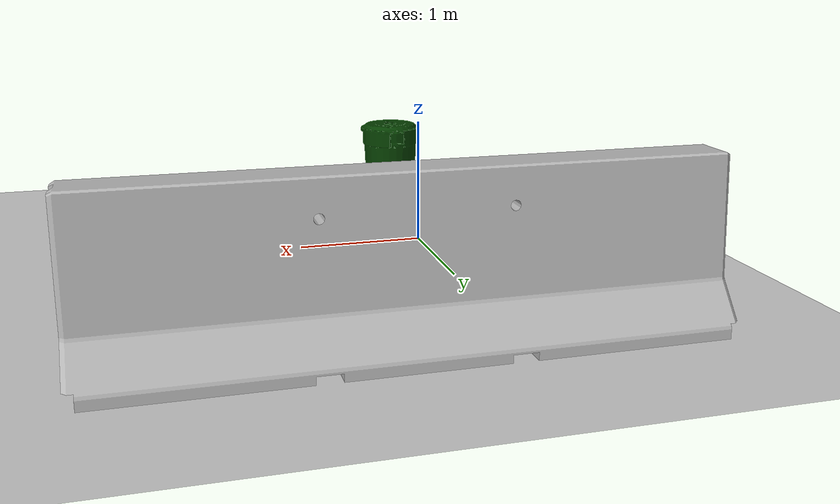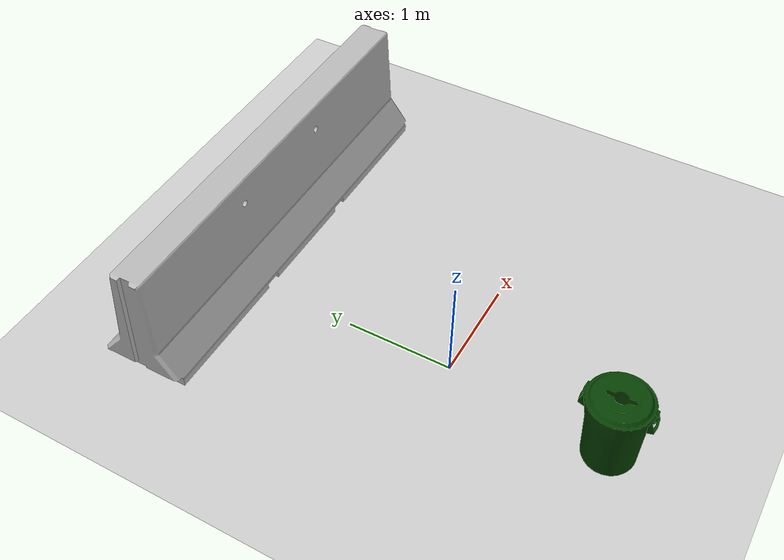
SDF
<sdf version="1.7">
 <world name="default">
  <light name="sun" type="directional">
   <pose>0 0 10 0 -0 0</pose>
   <diffuse>0.8 0.8 0.8 1</diffuse>
   <specular>0.2 0.2 0.2 1</specular>
   <attenuation>
    <range>1000</range>
    <constant>0.9</constant>
    <linear>0.01</linear>
    <quadratic>0.001</quadratic>
   </attenuation>
   <direction>-0.5 0.1 -0.9</direction>
   <spot><inner_angle>0</inner_angle><outer_angle>0</outer_angle><falloff>0</falloff></spot>
  </light>
  <model name="ground_plane">
   <static>1</static>
   <link name="link">
    <collision name="collision">
     <geometry><plane><normal>0 0 1</normal><size>100 100</size></plane></geometry>
     <surface><friction><ode><mu>100</mu><mu2>50</mu2></ode></friction></surface>
    </collision>
    <visual name="visual">
     <cast_shadows>0</cast_shadows>
     <geometry><plane><normal>0 0 1</normal><size>100 100</size></plane></geometry>
     <material>
      <script><uri>file://media/materials/scripts/gazebo.material</uri><name>Gazebo/Grey</name></script>
     </material>
    </visual>
   </link>
  </model>
  <gravity>0 0 -9.8</gravity>
  <magnetic_field>6e-06 2.3e-05 -4.2e-05</magnetic_field>
  <atmosphere type="adiabatic"/>
  <physics type="ode">
   <max_step_size>0.001</max_step_size>
   <real_time_factor>1</real_time_factor>
   <real_time_update_rate>1000</real_time_update_rate>
  </physics>
  <scene><ambient>0.4 0.4 0.4 1</ambient><background>0.7 0.7 0.7 1</background><shadows>1</shadows></scene>
  <spherical_coordinates>
   <surface_model>EARTH_WGS84</surface_model>
   <latitude_deg>0</latitude_deg>
   <longitude_deg>0</longitude_deg>
   <elevation>0</elevation>
   <heading_deg>0</heading_deg>
  </spherical_coordinates>
  <model name="first_2015_trash_can">
   <link name="link">
    <inertial>
     <pose>0 0 0.3683 0 -0 0</pose>
     <mass>4.83076</mass>
     <inertia>
      <ixx>0.281534</ixx>
      <ixy>0</ixy>
      <ixz>0</ixz>
      <iyy>0.281534</iyy>
      <iyz>0</iyz>
      <izz>0.126223</izz>
     </inertia>
    </inertial>
    <visual name="visual">
     <geometry><mesh><uri>model://first_2015_trash_can/meshes/trash_can.dae</uri></mesh></geometry>
    </visual>
    <collision name="collision">
     <geometry><mesh><uri>model://first_2015_trash_can/meshes/trash_can.dae</uri></mesh></geometry>
    </collision>
   </link>
   <pose>-0.131702 -1.50382 -3e-06 6e-06 1.4e-05 -0.000229</pose>
  </model>
  <model name="jersey_barrier">
   <static>1</static>
   <link name="link">
    <visual name="visual">
     <geometry><mesh><uri>model://jersey_barrier/meshes/jersey_barrier.dae</uri></mesh></geometry>
    </visual>
    <collision name="upright">
     <pose>0 0 0.5715 0 -0 0</pose>
     <geometry><box><size>4.06542 0.3063 1.143</size></box></geometry>
    </collision>
    <collision name="base">
     <pose>0 0 0.032258 0 -0 0</pose>
     <geometry><box><size>4.06542 0.8107 0.064516</size></box></geometry>
    </collision>
    <collision name="base2">
     <pose>0 0 0.1 0 -0 0</pose>
     <geometry><box><size>4.06542 0.65 0.1</size></box></geometry>
    </collision>
    <collision name="base3">
     <pose>0 0 0.2 0 -0 0</pose>
     <geometry><box><size>4.06542 0.5 0.1</size></box></geometry>
    </collision>
    <collision name="left-angle">
     <pose>0 -0.224 0.2401 0.9 -0 0</pose>
     <geometry><box><size>4.06542 0.5 0.064516</size></box></geometry>
    </collision>
    <collision name="right-angle">
     <pose>0 0.224 0.2401 -0.9 0 0</pose>
     <geometry><box><size>4.06542 0.5 0.064516</size></box></geometry>
    </collision>
   </link>
   <pose>0.67787 2.28693 0 0 -0 0</pose>
  </model>
 </world>
</sdf>
